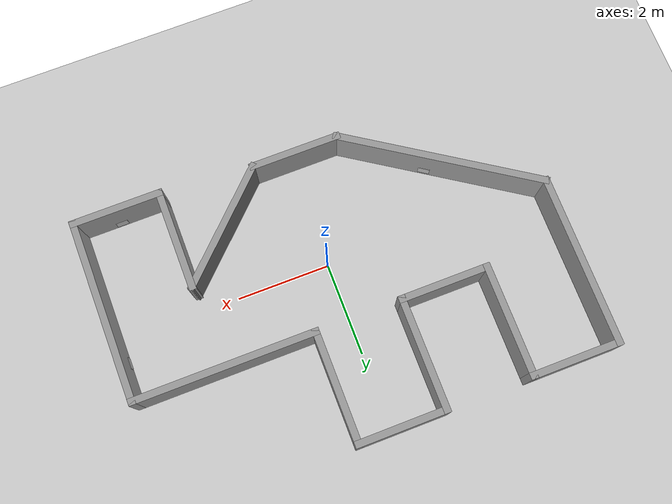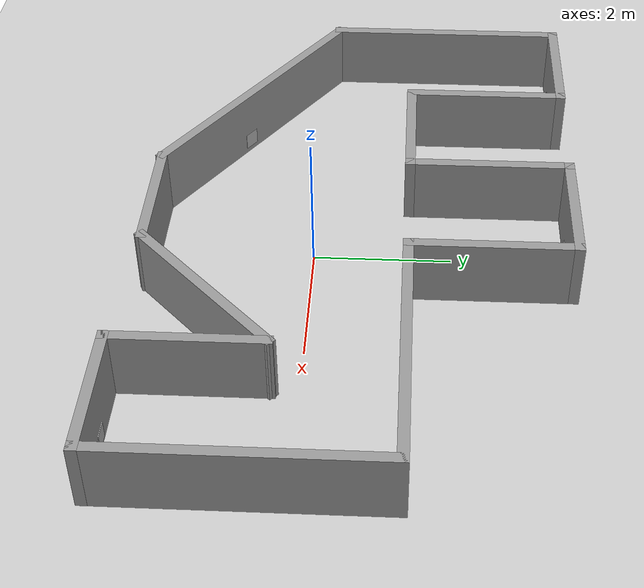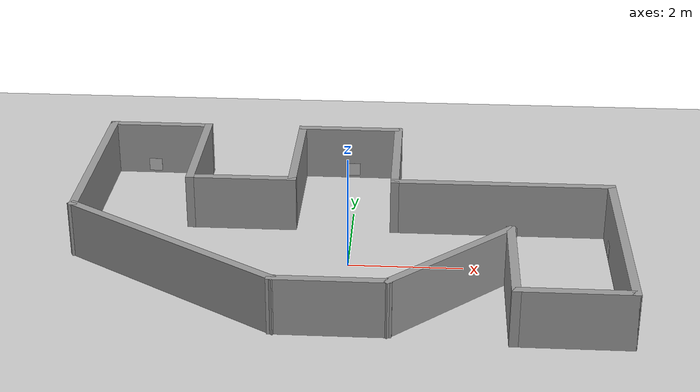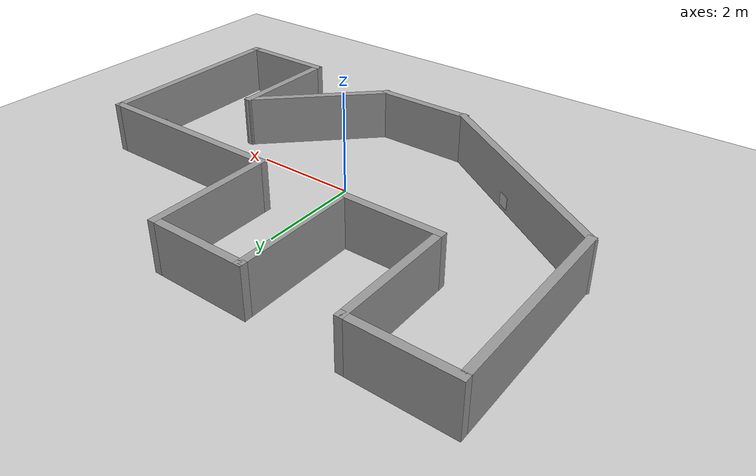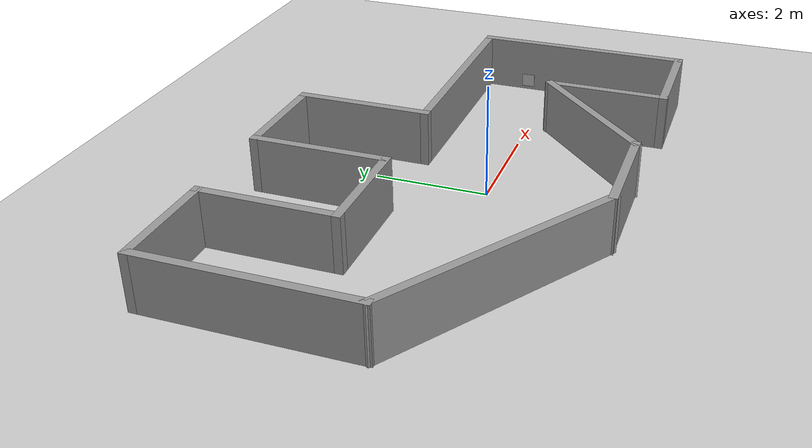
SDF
<sdf version="1.7">
 <world name="default">
  <model name="ground_plane">
   <static>1</static>
   <link name="link">
    <collision name="collision">
     <geometry><plane><normal>0 0 1</normal><size>100 100</size></plane></geometry>
     <surface><friction><ode><mu>100</mu><mu2>50</mu2></ode></friction></surface>
    </collision>
    <visual name="visual">
     <cast_shadows>0</cast_shadows>
     <geometry><plane><normal>0 0 1</normal><size>100 100</size></plane></geometry>
     <material>
      <script><uri>file://media/materials/scripts/gazebo.material</uri><name>Gazebo/Grey</name></script>
     </material>
    </visual>
   </link>
  </model>
  <light name="sun" type="directional">
   <pose>0 0 10 0 -0 0</pose>
   <diffuse>0.8 0.8 0.8 1</diffuse>
   <specular>0.2 0.2 0.2 1</specular>
   <attenuation>
    <range>1000</range>
    <constant>0.9</constant>
    <linear>0.01</linear>
    <quadratic>0.001</quadratic>
   </attenuation>
   <direction>-0.5 0.1 -0.9</direction>
   <spot><inner_angle>0</inner_angle><outer_angle>0</outer_angle><falloff>0</falloff></spot>
  </light>
  <scene><shadows>0</shadows><ambient>0.4 0.4 0.4 1</ambient><background>0.7 0.7 0.7 1</background></scene>
  <physics type="ode">
   <real_time_update_rate>1000</real_time_update_rate>
   <max_step_size>0.001</max_step_size>
   <real_time_factor>1</real_time_factor>
   <ode>
    <solver>
     <type>quick</type>
     <iters>150</iters>
     <precon_iters>0</precon_iters>
     <sor>1.4</sor>
     <use_dynamic_moi_rescaling>1</use_dynamic_moi_rescaling>
    </solver>
    <constraints>
     <cfm>1e-05</cfm>
     <erp>0.2</erp>
     <contact_max_correcting_vel>2000</contact_max_correcting_vel>
     <contact_surface_layer>0.01</contact_surface_layer>
    </constraints>
   </ode>
  </physics>
  <gravity>0 0 -9.8</gravity>
  <magnetic_field>6e-06 2.3e-05 -4.2e-05</magnetic_field>
  <atmosphere type="adiabatic"/>
  <spherical_coordinates>
   <surface_model>EARTH_WGS84</surface_model>
   <latitude_deg>0</latitude_deg>
   <longitude_deg>0</longitude_deg>
   <elevation>0</elevation>
   <heading_deg>0</heading_deg>
  </spherical_coordinates>
  <model name="test_world_3">
   <pose>-0.103192 0.624462 0 0 -0 0</pose>
   <link name="Wall_16">
    <collision name="Wall_16_Collision">
     <geometry><box><size>2 0.15 1</size></box></geometry>
     <pose>0 0 0.5 0 -0 0</pose>
    </collision>
    <visual name="Wall_16_Visual">
     <pose>0 0 0.5 0 -0 0</pose>
     <geometry><box><size>2 0.15 1</size></box></geometry>
     <material>
      <script><uri>file://media/materials/scripts/gazebo.material</uri><name>Gazebo/Grey</name></script>
      <ambient>1 1 1 1</ambient>
     </material>
     <meta><layer>0</layer></meta>
    </visual>
    <pose>-0.06053 -2.95 0 0 -0 0</pose>
   </link>
   <link name="Wall_20">
    <collision name="Wall_20_Collision">
     <geometry><box><size>4 0.15 1</size></box></geometry>
     <pose>0 0 0.5 0 -0 0</pose>
    </collision>
    <visual name="Wall_20_Visual">
     <pose>0 0 0.5 0 -0 0</pose>
     <geometry><box><size>4 0.15 1</size></box></geometry>
     <material>
      <script><uri>file://media/materials/scripts/gazebo.material</uri><name>Gazebo/Grey</name></script>
      <ambient>1 1 1 1</ambient>
     </material>
     <meta><layer>0</layer></meta>
    </visual>
    <pose>2.78947 0.75 0 0 -0 3.14159</pose>
   </link>
   <link name="Wall_21">
    <collision name="Wall_21_Collision">
     <geometry><box><size>2.5 0.15 1</size></box></geometry>
     <pose>0 0 0.5 0 -0 0</pose>
    </collision>
    <visual name="Wall_21_Visual">
     <pose>0 0 0.5 0 -0 0</pose>
     <geometry><box><size>2.5 0.15 1</size></box></geometry>
     <material>
      <script><uri>file://media/materials/scripts/gazebo.material</uri><name>Gazebo/Grey</name></script>
      <ambient>1 1 1 1</ambient>
     </material>
     <meta><layer>0</layer></meta>
    </visual>
    <pose>0.86447 1.925 0 0 -0 1.5708</pose>
   </link>
   <link name="Wall_22">
    <collision name="Wall_22_Collision">
     <geometry><box><size>2 0.15 1</size></box></geometry>
     <pose>0 0 0.5 0 -0 0</pose>
    </collision>
    <visual name="Wall_22_Visual">
     <pose>0 0 0.5 0 -0 0</pose>
     <geometry><box><size>2 0.15 1</size></box></geometry>
     <material>
      <script><uri>file://media/materials/scripts/gazebo.material</uri><name>Gazebo/Grey</name></script>
      <ambient>1 1 1 1</ambient>
     </material>
     <meta><layer>0</layer></meta>
    </visual>
    <pose>-0.06053 3.1 0 0 -0 3.14159</pose>
   </link>
   <link name="Wall_23">
    <collision name="Wall_23_Collision">
     <geometry><box><size>2.5 0.15 1</size></box></geometry>
     <pose>0 0 0.5 0 -0 0</pose>
    </collision>
    <visual name="Wall_23_Visual">
     <pose>0 0 0.5 0 -0 0</pose>
     <geometry><box><size>2.5 0.15 1</size></box></geometry>
     <material>
      <script><uri>file://media/materials/scripts/gazebo.material</uri><name>Gazebo/Grey</name></script>
      <ambient>1 1 1 1</ambient>
     </material>
     <meta><layer>0</layer></meta>
    </visual>
    <pose>-0.98553 1.925 0 0 -0 -1.5708</pose>
   </link>
   <link name="Wall_24">
    <collision name="Wall_24_Collision">
     <geometry><box><size>2 0.15 1</size></box></geometry>
     <pose>0 0 0.5 0 -0 0</pose>
    </collision>
    <visual name="Wall_24_Visual">
     <pose>0 0 0.5 0 -0 0</pose>
     <geometry><box><size>2 0.15 1</size></box></geometry>
     <material>
      <script><uri>file://media/materials/scripts/gazebo.material</uri><name>Gazebo/Grey</name></script>
      <ambient>1 1 1 1</ambient>
     </material>
     <meta><layer>0</layer></meta>
    </visual>
    <pose>-1.91053 0.75 0 0 -0 3.14159</pose>
   </link>
   <link name="Wall_25">
    <collision name="Wall_25_Collision">
     <geometry><box><size>2.5 0.15 1</size></box></geometry>
     <pose>0 0 0.5 0 -0 0</pose>
    </collision>
    <visual name="Wall_25_Visual">
     <pose>0 0 0.5 0 -0 0</pose>
     <geometry><box><size>2.5 0.15 1</size></box></geometry>
     <material>
      <script><uri>file://media/materials/scripts/gazebo.material</uri><name>Gazebo/Grey</name></script>
      <ambient>1 1 1 1</ambient>
     </material>
     <meta><layer>0</layer></meta>
    </visual>
    <pose>-2.83553 1.925 0 0 -0 1.5708</pose>
   </link>
   <link name="Wall_26">
    <collision name="Wall_26_Collision">
     <geometry><box><size>2 0.15 1</size></box></geometry>
     <pose>0 0 0.5 0 -0 0</pose>
    </collision>
    <visual name="Wall_26_Visual">
     <pose>0 0 0.5 0 -0 0</pose>
     <geometry><box><size>2 0.15 1</size></box></geometry>
     <material>
      <script><uri>file://media/materials/scripts/gazebo.material</uri><name>Gazebo/Grey</name></script>
      <ambient>1 1 1 1</ambient>
     </material>
     <meta><layer>0</layer></meta>
    </visual>
    <pose>-3.76053 3.1 0 0 -0 3.14159</pose>
   </link>
   <link name="Wall_27">
    <collision name="Wall_27_Collision">
     <geometry><box><size>3.75 0.15 1</size></box></geometry>
     <pose>0 0 0.5 0 -0 0</pose>
    </collision>
    <visual name="Wall_27_Visual">
     <pose>0 0 0.5 0 -0 0</pose>
     <geometry><box><size>3.75 0.15 1</size></box></geometry>
     <material>
      <script><uri>file://media/materials/scripts/gazebo.material</uri><name>Gazebo/Grey</name></script>
      <ambient>1 1 1 1</ambient>
     </material>
     <meta><layer>0</layer></meta>
    </visual>
    <pose>-4.68553 1.3 0 0 -0 -1.5708</pose>
   </link>
   <link name="Wall_28">
    <collision name="Wall_28_Collision">
     <geometry><box><size>4.58762 0.15 1</size></box></geometry>
     <pose>0 0 0.5 0 -0 0</pose>
    </collision>
    <visual name="Wall_28_Visual">
     <pose>0 0 0.5 0 -0 0</pose>
     <geometry><box><size>4.58762 0.15 1</size></box></geometry>
     <material>
      <script><uri>file://media/materials/scripts/gazebo.material</uri><name>Gazebo/Grey</name></script>
      <ambient>1 1 1 1</ambient>
     </material>
     <meta><layer>0</layer></meta>
    </visual>
    <pose>-2.83553 -1.725 0 0 -0 -0.584878</pose>
   </link>
   <link name="Wall_30">
    <collision name="Wall_30_Collision">
     <geometry><box><size>4 0.15 1</size></box></geometry>
     <pose>0 0 0.5 0 -0 0</pose>
    </collision>
    <visual name="Wall_30_Visual">
     <pose>0 0 0.5 0 -0 0</pose>
     <geometry><box><size>4 0.15 1</size></box></geometry>
     <material>
      <script><uri>file://media/materials/scripts/gazebo.material</uri><name>Gazebo/Grey</name></script>
      <ambient>1 1 1 1</ambient>
     </material>
     <meta><layer>0</layer></meta>
    </visual>
    <pose>4.71447 -1.175 0 0 -0 -1.5708</pose>
   </link>
   <link name="Wall_31">
    <collision name="Wall_31_Collision">
     <geometry><box><size>2 0.15 1</size></box></geometry>
     <pose>0 0 0.5 0 -0 0</pose>
    </collision>
    <visual name="Wall_31_Visual">
     <pose>0 0 0.5 0 -0 0</pose>
     <geometry><box><size>2 0.15 1</size></box></geometry>
     <material>
      <script><uri>file://media/materials/scripts/gazebo.material</uri><name>Gazebo/Grey</name></script>
      <ambient>1 1 1 1</ambient>
     </material>
     <meta><layer>0</layer></meta>
    </visual>
    <pose>3.78947 -3.1 0 0 -0 3.14159</pose>
   </link>
   <link name="Wall_32">
    <collision name="Wall_32_Collision">
     <geometry><box><size>2.25 0.15 1</size></box></geometry>
     <pose>0 0 0.5 0 -0 0</pose>
    </collision>
    <visual name="Wall_32_Visual">
     <pose>0 0 0.5 0 -0 0</pose>
     <geometry><box><size>2.25 0.15 1</size></box></geometry>
     <material>
      <script><uri>file://media/materials/scripts/gazebo.material</uri><name>Gazebo/Grey</name></script>
      <ambient>1 1 1 1</ambient>
     </material>
     <meta><layer>0</layer></meta>
    </visual>
    <pose>2.86447 -2.05 0 0 -0 1.5708</pose>
   </link>
   <link name="Wall_33">
    <collision name="Wall_33_Collision">
     <geometry><box><size>2.9433 0.15 1</size></box></geometry>
     <pose>0 0 0.5 0 -0 0</pose>
    </collision>
    <visual name="Wall_33_Visual">
     <pose>0 0 0.5 0 -0 0</pose>
     <geometry><box><size>2.9433 0.15 1</size></box></geometry>
     <material>
      <script><uri>file://media/materials/scripts/gazebo.material</uri><name>Gazebo/Grey</name></script>
      <ambient>1 1 1 1</ambient>
     </material>
     <meta><layer>0</layer></meta>
    </visual>
    <pose>1.86447 -1.975 0 0 -0 -2.36885</pose>
   </link>
   <static>1</static>
  </model>
  <model name="qr_code_1">
   <static>1</static>
   <link name="link">
    <visual name="visual">
     <cast_shadows>0</cast_shadows>
     <geometry><box><size>0.01 0.25 0.25</size></box></geometry>
     <material>
      <script>
       <uri>model://qr_code_1/materials/scripts</uri>
       <uri>model://qr_code_1/materials/textures</uri>
       <name>QRCode1/Image</name>
      </script>
     </material>
    </visual>
   </link>
   <pose>-2.65756 -1.19288 0.206999 0 -0 0.978122</pose>
  </model>
  <model name="qr_code_2">
   <static>1</static>
   <link name="link">
    <visual name="visual">
     <cast_shadows>0</cast_shadows>
     <geometry><box><size>0.01 0.25 0.25</size></box></geometry>
     <material>
      <script>
       <uri>model://qr_code_2/materials/scripts</uri>
       <uri>model://qr_code_2/materials/textures</uri>
       <name>QRCode2/Image</name>
      </script>
     </material>
    </visual>
   </link>
   <pose>-4.00479 3.6524 0.168767 0 0 -1.5708</pose>
  </model>
  <model name="qr_code_3">
   <static>1</static>
   <link name="link">
    <visual name="visual">
     <cast_shadows>0</cast_shadows>
     <geometry><box><size>0.01 0.25 0.25</size></box></geometry>
     <material>
      <script>
       <uri>model://qr_code_3/materials/scripts</uri>
       <uri>model://qr_code_3/materials/textures</uri>
       <name>QRCode3/Image</name>
      </script>
     </material>
    </visual>
   </link>
   <pose>-0.095147 3.64322 0.173466 0 0 -1.5708</pose>
  </model>
  <model name="qr_code_4">
   <static>1</static>
   <link name="link">
    <visual name="visual">
     <cast_shadows>0</cast_shadows>
     <geometry><box><size>0.01 0.25 0.25</size></box></geometry>
     <material>
      <script>
       <uri>model://qr_code_4/materials/scripts</uri>
       <uri>model://qr_code_4/materials/textures</uri>
       <name>QRCode4/Image</name>
      </script>
     </material>
    </visual>
   </link>
   <pose>4.52571 0.506386 0.193656 0 -0 0</pose>
  </model>
  <model name="qr_code_5">
   <static>1</static>
   <link name="link">
    <visual name="visual">
     <cast_shadows>0</cast_shadows>
     <geometry><box><size>0.01 0.25 0.25</size></box></geometry>
     <material>
      <script>
       <uri>model://qr_code_5/materials/scripts</uri>
       <uri>model://qr_code_5/materials/textures</uri>
       <name>QRCode5/Image</name>
      </script>
     </material>
    </visual>
   </link>
   <pose>3.75325 -2.39273 0.194714 0 0 -1.5708</pose>
  </model>
 </world>
</sdf>
